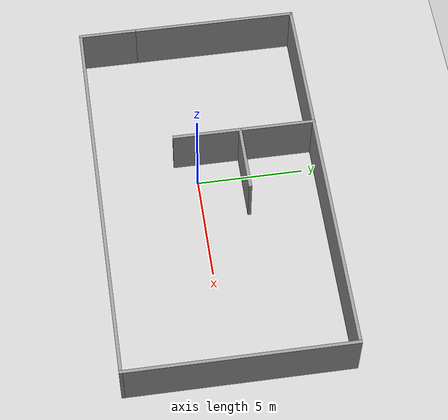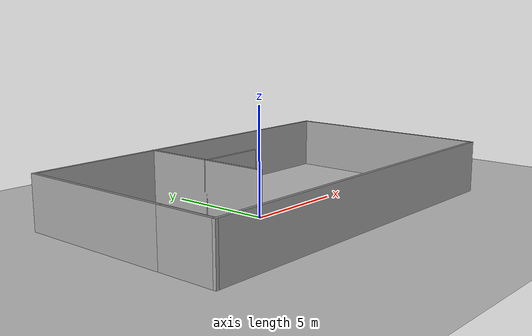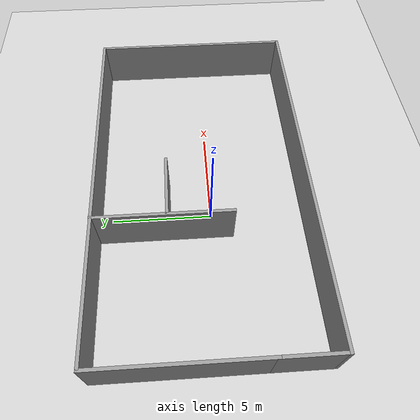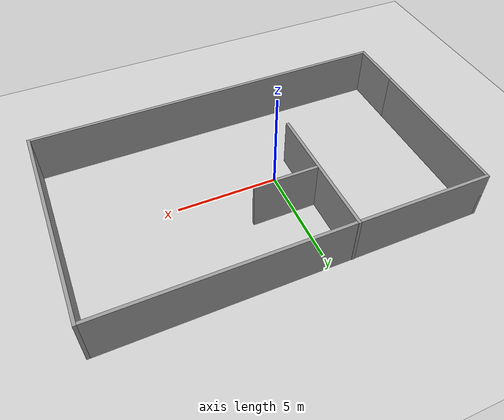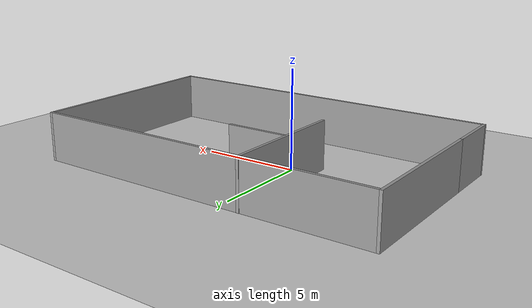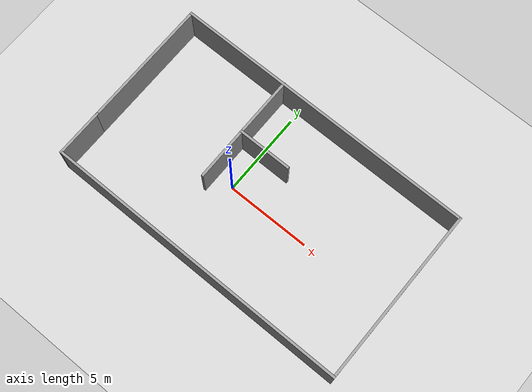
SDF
<sdf version="1.6">
 <world name="default">
  <light name="sun" type="directional">
   <pose>0 0 10 0 -0 0</pose>
   <diffuse>0.8 0.8 0.8 1</diffuse>
   <specular>0.2 0.2 0.2 1</specular>
   <attenuation>
    <range>1000</range>
    <constant>0.9</constant>
    <linear>0.01</linear>
    <quadratic>0.001</quadratic>
   </attenuation>
   <direction>-0.5 0.1 -0.9</direction>
  </light>
  <model name="ground_plane">
   <static>1</static>
   <link name="link">
    <collision name="collision">
     <geometry><plane><normal>0 0 1</normal><size>100 100</size></plane></geometry>
     <surface>
      <contact><collide_bitmask>65535</collide_bitmask></contact>
      <friction><ode><mu>100</mu><mu2>50</mu2></ode></friction>
     </surface>
    </collision>
    <visual name="visual">
     <cast_shadows>0</cast_shadows>
     <geometry><plane><normal>0 0 1</normal><size>100 100</size></plane></geometry>
     <material>
      <script><uri>file://media/materials/scripts/gazebo.material</uri><name>Gazebo/Grey</name></script>
     </material>
    </visual>
   </link>
  </model>
  <gravity>0 0 -9.8</gravity>
  <magnetic_field>6e-06 2.3e-05 -4.2e-05</magnetic_field>
  <atmosphere type="adiabatic"/>
  <physics name="default_physics" default="0" type="ode">
   <max_step_size>0.001</max_step_size>
   <real_time_factor>1</real_time_factor>
   <real_time_update_rate>1000</real_time_update_rate>
  </physics>
  <scene><ambient>0.4 0.4 0.4 1</ambient><background>0.7 0.7 0.7 1</background><shadows>1</shadows></scene>
  <spherical_coordinates>
   <surface_model>EARTH_WGS84</surface_model>
   <latitude_deg>0</latitude_deg>
   <longitude_deg>0</longitude_deg>
   <elevation>0</elevation>
   <heading_deg>0</heading_deg>
  </spherical_coordinates>
  <model name="TestMaze">
   <pose>1.45361 0.462013 0 0 -0 0</pose>
   <link name="Wall_12">
    <collision name="Wall_12_Collision">
     <geometry><box><size>7.75 0.15 2.5</size></box></geometry>
     <pose>0 0 1.25 0 -0 0</pose>
    </collision>
    <visual name="Wall_12_Visual">
     <pose>0 0 1.25 0 -0 0</pose>
     <geometry><box><size>7.75 0.15 2.5</size></box></geometry>
     <material>
      <script><uri>file://media/materials/scripts/gazebo.material</uri><name>Gazebo/Grey</name></script>
      <ambient>1 1 1 1</ambient>
     </material>
     <meta><layer>0</layer></meta>
    </visual>
    <pose>-9.05 1.368 0 0 -0 1.5708</pose>
   </link>
   <link name="Wall_13">
    <collision name="Wall_13_Collision">
     <geometry><box><size>18.25 0.15 2.5</size></box></geometry>
     <pose>0 0 1.25 0 -0 0</pose>
    </collision>
    <visual name="Wall_13_Visual">
     <pose>0 0 1.25 0 -0 0</pose>
     <geometry><box><size>18.25 0.15 2.5</size></box></geometry>
     <material>
      <script><uri>file://media/materials/scripts/gazebo.material</uri><name>Gazebo/Grey</name></script>
      <ambient>1 1 1 1</ambient>
     </material>
     <meta><layer>0</layer></meta>
    </visual>
    <pose>-0 5.168 0 0 -0 0</pose>
   </link>
   <link name="Wall_14">
    <collision name="Wall_14_Collision">
     <geometry><box><size>10.5 0.15 2.5</size></box></geometry>
     <pose>0 0 1.25 0 -0 0</pose>
    </collision>
    <visual name="Wall_14_Visual">
     <pose>0 0 1.25 0 -0 0</pose>
     <geometry><box><size>10.5 0.15 2.5</size></box></geometry>
     <material>
      <script><uri>file://media/materials/scripts/gazebo.material</uri><name>Gazebo/Grey</name></script>
      <ambient>1 1 1 1</ambient>
     </material>
     <meta><layer>0</layer></meta>
    </visual>
    <pose>9.05 -0.006995 0 0 -0 -1.5708</pose>
   </link>
   <link name="Wall_15">
    <collision name="Wall_15_Collision">
     <geometry><box><size>18.25 0.15 2.5</size></box></geometry>
     <pose>0 0 1.25 0 -0 0</pose>
    </collision>
    <visual name="Wall_15_Visual">
     <pose>0 0 1.25 0 -0 0</pose>
     <geometry><box><size>18.25 0.15 2.5</size></box></geometry>
     <material>
      <script><uri>file://media/materials/scripts/gazebo.material</uri><name>Gazebo/Grey</name></script>
      <ambient>1 1 1 1</ambient>
     </material>
     <meta><layer>0</layer></meta>
    </visual>
    <pose>-0 -5.18199 0 0 -0 3.14159</pose>
   </link>
   <link name="Wall_16">
    <collision name="Wall_16_Collision">
     <geometry><box><size>2.9 0.15 2.5</size></box></geometry>
     <pose>0 0 1.25 0 -0 0</pose>
    </collision>
    <visual name="Wall_16_Visual">
     <pose>0 0 1.25 0 -0 0</pose>
     <geometry><box><size>2.9 0.15 2.5</size></box></geometry>
     <material>
      <script><uri>file://media/materials/scripts/gazebo.material</uri><name>Gazebo/Grey</name></script>
      <ambient>1 1 1 1</ambient>
     </material>
     <meta><layer>0</layer></meta>
    </visual>
    <pose>-9.05 -3.807 0 0 -0 1.5708</pose>
   </link>
   <link name="Wall_19">
    <collision name="Wall_19_Collision">
     <geometry><box><size>6.75 0.15 2.5</size></box></geometry>
     <pose>0 0 1.25 0 -0 0</pose>
    </collision>
    <visual name="Wall_19_Visual">
     <pose>0 0 1.25 0 -0 0</pose>
     <geometry><box><size>6.75 0.15 2.5</size></box></geometry>
     <material>
      <script><uri>file://media/materials/scripts/gazebo.material</uri><name>Gazebo/Grey</name></script>
      <ambient>1 1 1 1</ambient>
     </material>
     <meta><layer>0</layer></meta>
    </visual>
    <pose>-2.55899 1.882 0 0 -0 -1.5708</pose>
   </link>
   <link name="Wall_21">
    <collision name="Wall_21_Collision">
     <geometry><box><size>3.25 0.15 2.5</size></box></geometry>
     <pose>0 0 1.25 0 -0 0</pose>
    </collision>
    <visual name="Wall_21_Visual">
     <pose>0 0 1.25 0 -0 0</pose>
     <geometry><box><size>3.25 0.15 2.5</size></box></geometry>
     <material>
      <script><uri>file://media/materials/scripts/gazebo.material</uri><name>Gazebo/Grey</name></script>
      <ambient>1 1 1 1</ambient>
     </material>
     <meta><layer>0</layer></meta>
    </visual>
    <pose>-1.00899 1.68634 0 0 -0 0</pose>
   </link>
   <static>1</static>
  </model>
 </world>
</sdf>
